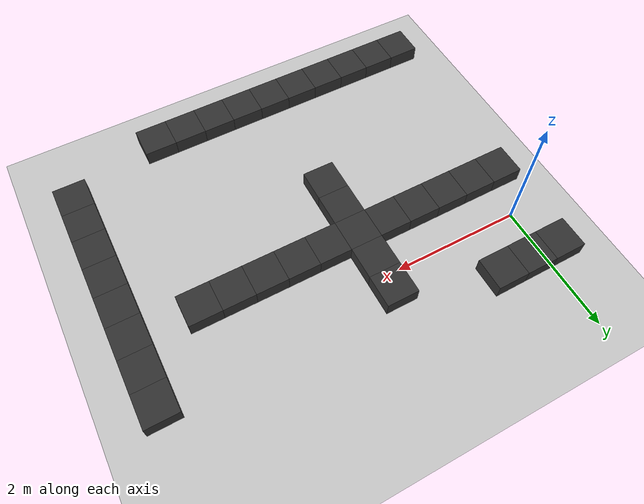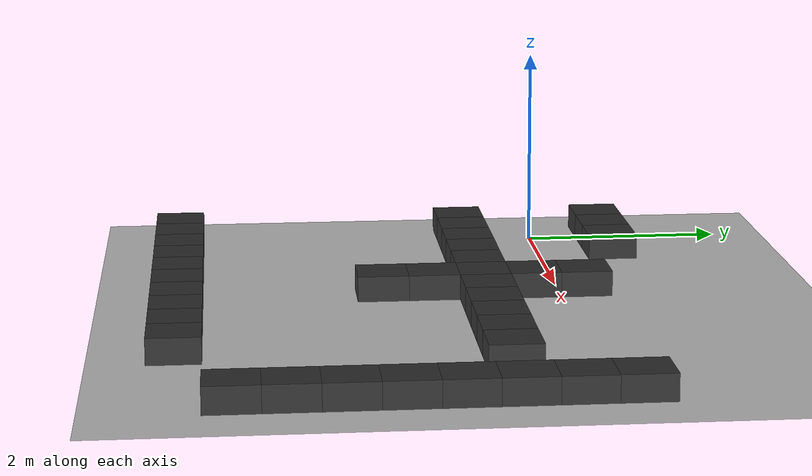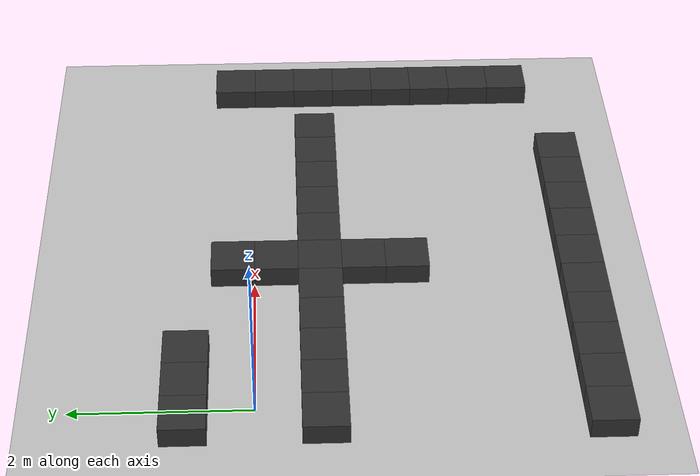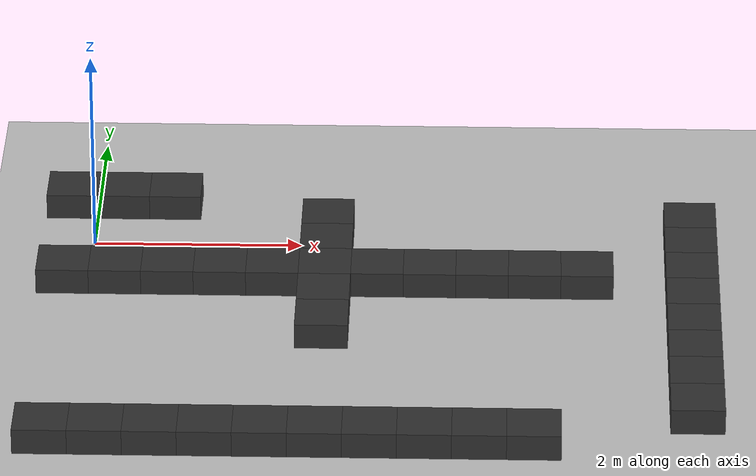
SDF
<sdf version="1.7">
 <world name="default">
  <model name="ground">
   <static>true</static>
   <link name="link">
    <collision name="col">
     <geometry><plane><normal>0 0 1</normal><size>200 200</size></plane></geometry>
    </collision>
    <visual name="vis">
     <geometry><plane><normal>0 0 1</normal><size>200 200</size></plane></geometry>
     <material>
      <ambient>0.25 0.25 0.25 1</ambient>
      <diffuse>0.80 0.80 0.80 1</diffuse>
      <specular>0.05 0.05 0.05 1</specular>
     </material>
    </visual>
   </link>
  </model>
  <model name="w_0_11">
   <static>true</static>
   <pose>-0.250 -3.750 0.125 0 0 0</pose>
   <link name="link">
    <collision name="col"><geometry><box><size>0.500 0.500 0.250</size></box></geometry></collision>
    <visual name="vis">
     <geometry><box><size>0.500 0.500 0.250</size></box></geometry>
     <material><ambient>0.2 0.2 0.2 1.0</ambient></material>
    </visual>
   </link>
  </model>
  <model name="w_0_12">
   <static>true</static>
   <pose>0.250 -3.750 0.125 0 0 0</pose>
   <link name="link">
    <collision name="col"><geometry><box><size>0.500 0.500 0.250</size></box></geometry></collision>
    <visual name="vis">
     <geometry><box><size>0.500 0.500 0.250</size></box></geometry>
     <material><ambient>0.2 0.2 0.2 1.0</ambient></material>
    </visual>
   </link>
  </model>
  <model name="w_0_13">
   <static>true</static>
   <pose>0.750 -3.750 0.125 0 0 0</pose>
   <link name="link">
    <collision name="col"><geometry><box><size>0.500 0.500 0.250</size></box></geometry></collision>
    <visual name="vis">
     <geometry><box><size>0.500 0.500 0.250</size></box></geometry>
     <material><ambient>0.2 0.2 0.2 1.0</ambient></material>
    </visual>
   </link>
  </model>
  <model name="w_0_14">
   <static>true</static>
   <pose>1.250 -3.750 0.125 0 0 0</pose>
   <link name="link">
    <collision name="col"><geometry><box><size>0.500 0.500 0.250</size></box></geometry></collision>
    <visual name="vis">
     <geometry><box><size>0.500 0.500 0.250</size></box></geometry>
     <material><ambient>0.2 0.2 0.2 1.0</ambient></material>
    </visual>
   </link>
  </model>
  <model name="w_0_15">
   <static>true</static>
   <pose>1.750 -3.750 0.125 0 0 0</pose>
   <link name="link">
    <collision name="col"><geometry><box><size>0.500 0.500 0.250</size></box></geometry></collision>
    <visual name="vis">
     <geometry><box><size>0.500 0.500 0.250</size></box></geometry>
     <material><ambient>0.2 0.2 0.2 1.0</ambient></material>
    </visual>
   </link>
  </model>
  <model name="w_0_16">
   <static>true</static>
   <pose>2.250 -3.750 0.125 0 0 0</pose>
   <link name="link">
    <collision name="col"><geometry><box><size>0.500 0.500 0.250</size></box></geometry></collision>
    <visual name="vis">
     <geometry><box><size>0.500 0.500 0.250</size></box></geometry>
     <material><ambient>0.2 0.2 0.2 1.0</ambient></material>
    </visual>
   </link>
  </model>
  <model name="w_0_17">
   <static>true</static>
   <pose>2.750 -3.750 0.125 0 0 0</pose>
   <link name="link">
    <collision name="col"><geometry><box><size>0.500 0.500 0.250</size></box></geometry></collision>
    <visual name="vis">
     <geometry><box><size>0.500 0.500 0.250</size></box></geometry>
     <material><ambient>0.2 0.2 0.2 1.0</ambient></material>
    </visual>
   </link>
  </model>
  <model name="w_0_18">
   <static>true</static>
   <pose>3.250 -3.750 0.125 0 0 0</pose>
   <link name="link">
    <collision name="col"><geometry><box><size>0.500 0.500 0.250</size></box></geometry></collision>
    <visual name="vis">
     <geometry><box><size>0.500 0.500 0.250</size></box></geometry>
     <material><ambient>0.2 0.2 0.2 1.0</ambient></material>
    </visual>
   </link>
  </model>
  <model name="w_0_19">
   <static>true</static>
   <pose>3.750 -3.750 0.125 0 0 0</pose>
   <link name="link">
    <collision name="col"><geometry><box><size>0.500 0.500 0.250</size></box></geometry></collision>
    <visual name="vis">
     <geometry><box><size>0.500 0.500 0.250</size></box></geometry>
     <material><ambient>0.2 0.2 0.2 1.0</ambient></material>
    </visual>
   </link>
  </model>
  <model name="w_0_20">
   <static>true</static>
   <pose>4.250 -3.750 0.125 0 0 0</pose>
   <link name="link">
    <collision name="col"><geometry><box><size>0.500 0.500 0.250</size></box></geometry></collision>
    <visual name="vis">
     <geometry><box><size>0.500 0.500 0.250</size></box></geometry>
     <material><ambient>0.2 0.2 0.2 1.0</ambient></material>
    </visual>
   </link>
  </model>
  <model name="w_1_23">
   <static>true</static>
   <pose>5.750 -3.250 0.125 0 0 0</pose>
   <link name="link">
    <collision name="col"><geometry><box><size>0.500 0.500 0.250</size></box></geometry></collision>
    <visual name="vis">
     <geometry><box><size>0.500 0.500 0.250</size></box></geometry>
     <material><ambient>0.2 0.2 0.2 1.0</ambient></material>
    </visual>
   </link>
  </model>
  <model name="w_2_23">
   <static>true</static>
   <pose>5.750 -2.750 0.125 0 0 0</pose>
   <link name="link">
    <collision name="col"><geometry><box><size>0.500 0.500 0.250</size></box></geometry></collision>
    <visual name="vis">
     <geometry><box><size>0.500 0.500 0.250</size></box></geometry>
     <material><ambient>0.2 0.2 0.2 1.0</ambient></material>
    </visual>
   </link>
  </model>
  <model name="w_3_23">
   <static>true</static>
   <pose>5.750 -2.250 0.125 0 0 0</pose>
   <link name="link">
    <collision name="col"><geometry><box><size>0.500 0.500 0.250</size></box></geometry></collision>
    <visual name="vis">
     <geometry><box><size>0.500 0.500 0.250</size></box></geometry>
     <material><ambient>0.2 0.2 0.2 1.0</ambient></material>
    </visual>
   </link>
  </model>
  <model name="w_4_16">
   <static>true</static>
   <pose>2.250 -1.750 0.125 0 0 0</pose>
   <link name="link">
    <collision name="col"><geometry><box><size>0.500 0.500 0.250</size></box></geometry></collision>
    <visual name="vis">
     <geometry><box><size>0.500 0.500 0.250</size></box></geometry>
     <material><ambient>0.2 0.2 0.2 1.0</ambient></material>
    </visual>
   </link>
  </model>
  <model name="w_4_23">
   <static>true</static>
   <pose>5.750 -1.750 0.125 0 0 0</pose>
   <link name="link">
    <collision name="col"><geometry><box><size>0.500 0.500 0.250</size></box></geometry></collision>
    <visual name="vis">
     <geometry><box><size>0.500 0.500 0.250</size></box></geometry>
     <material><ambient>0.2 0.2 0.2 1.0</ambient></material>
    </visual>
   </link>
  </model>
  <model name="w_5_16">
   <static>true</static>
   <pose>2.250 -1.250 0.125 0 0 0</pose>
   <link name="link">
    <collision name="col"><geometry><box><size>0.500 0.500 0.250</size></box></geometry></collision>
    <visual name="vis">
     <geometry><box><size>0.500 0.500 0.250</size></box></geometry>
     <material><ambient>0.2 0.2 0.2 1.0</ambient></material>
    </visual>
   </link>
  </model>
  <model name="w_5_23">
   <static>true</static>
   <pose>5.750 -1.250 0.125 0 0 0</pose>
   <link name="link">
    <collision name="col"><geometry><box><size>0.500 0.500 0.250</size></box></geometry></collision>
    <visual name="vis">
     <geometry><box><size>0.500 0.500 0.250</size></box></geometry>
     <material><ambient>0.2 0.2 0.2 1.0</ambient></material>
    </visual>
   </link>
  </model>
  <model name="w_6_11">
   <static>true</static>
   <pose>-0.250 -0.750 0.125 0 0 0</pose>
   <link name="link">
    <collision name="col"><geometry><box><size>0.500 0.500 0.250</size></box></geometry></collision>
    <visual name="vis">
     <geometry><box><size>0.500 0.500 0.250</size></box></geometry>
     <material><ambient>0.2 0.2 0.2 1.0</ambient></material>
    </visual>
   </link>
  </model>
  <model name="w_6_12">
   <static>true</static>
   <pose>0.250 -0.750 0.125 0 0 0</pose>
   <link name="link">
    <collision name="col"><geometry><box><size>0.500 0.500 0.250</size></box></geometry></collision>
    <visual name="vis">
     <geometry><box><size>0.500 0.500 0.250</size></box></geometry>
     <material><ambient>0.2 0.2 0.2 1.0</ambient></material>
    </visual>
   </link>
  </model>
  <model name="w_6_13">
   <static>true</static>
   <pose>0.750 -0.750 0.125 0 0 0</pose>
   <link name="link">
    <collision name="col"><geometry><box><size>0.500 0.500 0.250</size></box></geometry></collision>
    <visual name="vis">
     <geometry><box><size>0.500 0.500 0.250</size></box></geometry>
     <material><ambient>0.2 0.2 0.2 1.0</ambient></material>
    </visual>
   </link>
  </model>
  <model name="w_6_14">
   <static>true</static>
   <pose>1.250 -0.750 0.125 0 0 0</pose>
   <link name="link">
    <collision name="col"><geometry><box><size>0.500 0.500 0.250</size></box></geometry></collision>
    <visual name="vis">
     <geometry><box><size>0.500 0.500 0.250</size></box></geometry>
     <material><ambient>0.2 0.2 0.2 1.0</ambient></material>
    </visual>
   </link>
  </model>
  <model name="w_6_15">
   <static>true</static>
   <pose>1.750 -0.750 0.125 0 0 0</pose>
   <link name="link">
    <collision name="col"><geometry><box><size>0.500 0.500 0.250</size></box></geometry></collision>
    <visual name="vis">
     <geometry><box><size>0.500 0.500 0.250</size></box></geometry>
     <material><ambient>0.2 0.2 0.2 1.0</ambient></material>
    </visual>
   </link>
  </model>
  <model name="w_6_16">
   <static>true</static>
   <pose>2.250 -0.750 0.125 0 0 0</pose>
   <link name="link">
    <collision name="col"><geometry><box><size>0.500 0.500 0.250</size></box></geometry></collision>
    <visual name="vis">
     <geometry><box><size>0.500 0.500 0.250</size></box></geometry>
     <material><ambient>0.2 0.2 0.2 1.0</ambient></material>
    </visual>
   </link>
  </model>
  <model name="w_6_17">
   <static>true</static>
   <pose>2.750 -0.750 0.125 0 0 0</pose>
   <link name="link">
    <collision name="col"><geometry><box><size>0.500 0.500 0.250</size></box></geometry></collision>
    <visual name="vis">
     <geometry><box><size>0.500 0.500 0.250</size></box></geometry>
     <material><ambient>0.2 0.2 0.2 1.0</ambient></material>
    </visual>
   </link>
  </model>
  <model name="w_6_18">
   <static>true</static>
   <pose>3.250 -0.750 0.125 0 0 0</pose>
   <link name="link">
    <collision name="col"><geometry><box><size>0.500 0.500 0.250</size></box></geometry></collision>
    <visual name="vis">
     <geometry><box><size>0.500 0.500 0.250</size></box></geometry>
     <material><ambient>0.2 0.2 0.2 1.0</ambient></material>
    </visual>
   </link>
  </model>
  <model name="w_6_19">
   <static>true</static>
   <pose>3.750 -0.750 0.125 0 0 0</pose>
   <link name="link">
    <collision name="col"><geometry><box><size>0.500 0.500 0.250</size></box></geometry></collision>
    <visual name="vis">
     <geometry><box><size>0.500 0.500 0.250</size></box></geometry>
     <material><ambient>0.2 0.2 0.2 1.0</ambient></material>
    </visual>
   </link>
  </model>
  <model name="w_6_20">
   <static>true</static>
   <pose>4.250 -0.750 0.125 0 0 0</pose>
   <link name="link">
    <collision name="col"><geometry><box><size>0.500 0.500 0.250</size></box></geometry></collision>
    <visual name="vis">
     <geometry><box><size>0.500 0.500 0.250</size></box></geometry>
     <material><ambient>0.2 0.2 0.2 1.0</ambient></material>
    </visual>
   </link>
  </model>
  <model name="w_6_21">
   <static>true</static>
   <pose>4.750 -0.750 0.125 0 0 0</pose>
   <link name="link">
    <collision name="col"><geometry><box><size>0.500 0.500 0.250</size></box></geometry></collision>
    <visual name="vis">
     <geometry><box><size>0.500 0.500 0.250</size></box></geometry>
     <material><ambient>0.2 0.2 0.2 1.0</ambient></material>
    </visual>
   </link>
  </model>
  <model name="w_6_23">
   <static>true</static>
   <pose>5.750 -0.750 0.125 0 0 0</pose>
   <link name="link">
    <collision name="col"><geometry><box><size>0.500 0.500 0.250</size></box></geometry></collision>
    <visual name="vis">
     <geometry><box><size>0.500 0.500 0.250</size></box></geometry>
     <material><ambient>0.2 0.2 0.2 1.0</ambient></material>
    </visual>
   </link>
  </model>
  <model name="w_7_16">
   <static>true</static>
   <pose>2.250 -0.250 0.125 0 0 0</pose>
   <link name="link">
    <collision name="col"><geometry><box><size>0.500 0.500 0.250</size></box></geometry></collision>
    <visual name="vis">
     <geometry><box><size>0.500 0.500 0.250</size></box></geometry>
     <material><ambient>0.2 0.2 0.2 1.0</ambient></material>
    </visual>
   </link>
  </model>
  <model name="w_7_23">
   <static>true</static>
   <pose>5.750 -0.250 0.125 0 0 0</pose>
   <link name="link">
    <collision name="col"><geometry><box><size>0.500 0.500 0.250</size></box></geometry></collision>
    <visual name="vis">
     <geometry><box><size>0.500 0.500 0.250</size></box></geometry>
     <material><ambient>0.2 0.2 0.2 1.0</ambient></material>
    </visual>
   </link>
  </model>
  <model name="w_8_16">
   <static>true</static>
   <pose>2.250 0.250 0.125 0 0 0</pose>
   <link name="link">
    <collision name="col"><geometry><box><size>0.500 0.500 0.250</size></box></geometry></collision>
    <visual name="vis">
     <geometry><box><size>0.500 0.500 0.250</size></box></geometry>
     <material><ambient>0.2 0.2 0.2 1.0</ambient></material>
    </visual>
   </link>
  </model>
  <model name="w_8_23">
   <static>true</static>
   <pose>5.750 0.250 0.125 0 0 0</pose>
   <link name="link">
    <collision name="col"><geometry><box><size>0.500 0.500 0.250</size></box></geometry></collision>
    <visual name="vis">
     <geometry><box><size>0.500 0.500 0.250</size></box></geometry>
     <material><ambient>0.2 0.2 0.2 1.0</ambient></material>
    </visual>
   </link>
  </model>
  <model name="w_9_11">
   <static>true</static>
   <pose>-0.250 0.750 0.125 0 0 0</pose>
   <link name="link">
    <collision name="col"><geometry><box><size>0.500 0.500 0.250</size></box></geometry></collision>
    <visual name="vis">
     <geometry><box><size>0.500 0.500 0.250</size></box></geometry>
     <material><ambient>0.2 0.2 0.2 1.0</ambient></material>
    </visual>
   </link>
  </model>
  <model name="w_9_12">
   <static>true</static>
   <pose>0.250 0.750 0.125 0 0 0</pose>
   <link name="link">
    <collision name="col"><geometry><box><size>0.500 0.500 0.250</size></box></geometry></collision>
    <visual name="vis">
     <geometry><box><size>0.500 0.500 0.250</size></box></geometry>
     <material><ambient>0.2 0.2 0.2 1.0</ambient></material>
    </visual>
   </link>
  </model>
  <model name="w_9_13">
   <static>true</static>
   <pose>0.750 0.750 0.125 0 0 0</pose>
   <link name="link">
    <collision name="col"><geometry><box><size>0.500 0.500 0.250</size></box></geometry></collision>
    <visual name="vis">
     <geometry><box><size>0.500 0.500 0.250</size></box></geometry>
     <material><ambient>0.2 0.2 0.2 1.0</ambient></material>
    </visual>
   </link>
  </model>
 </world>
</sdf>
